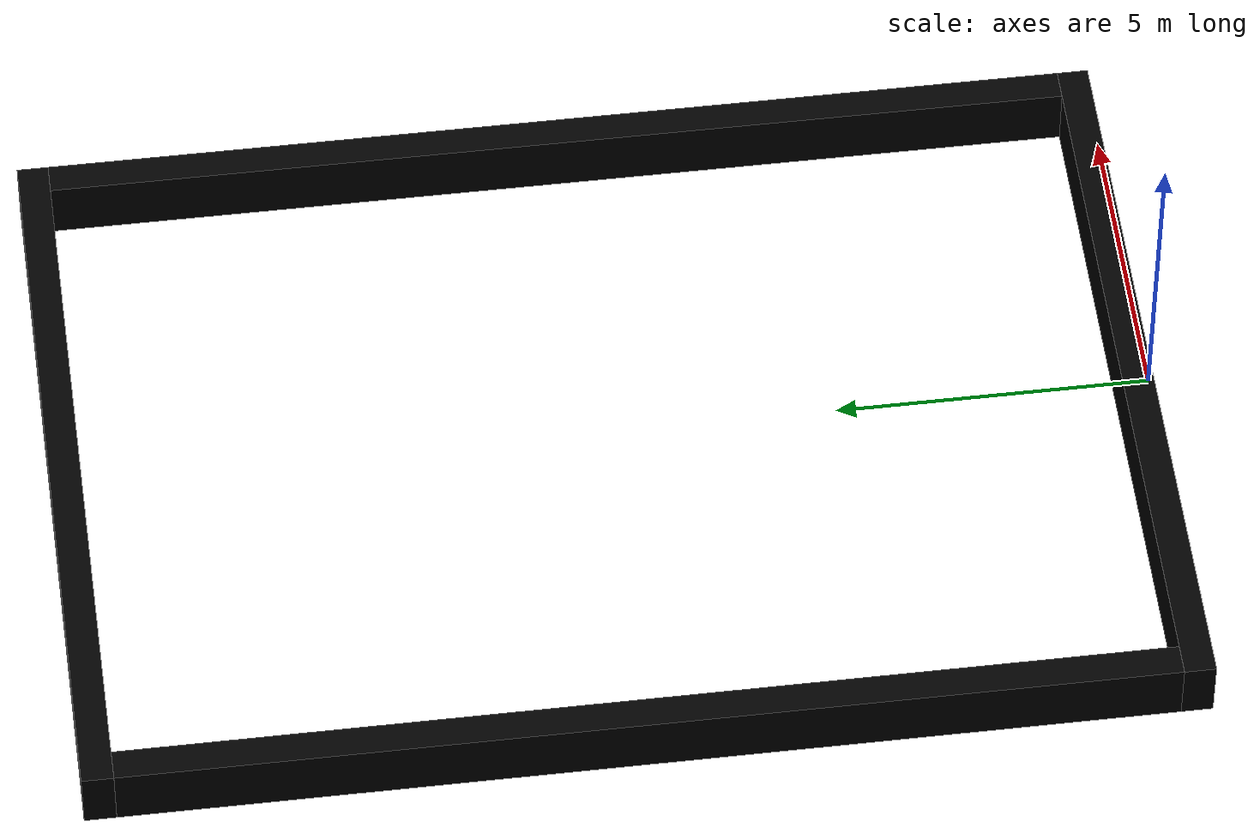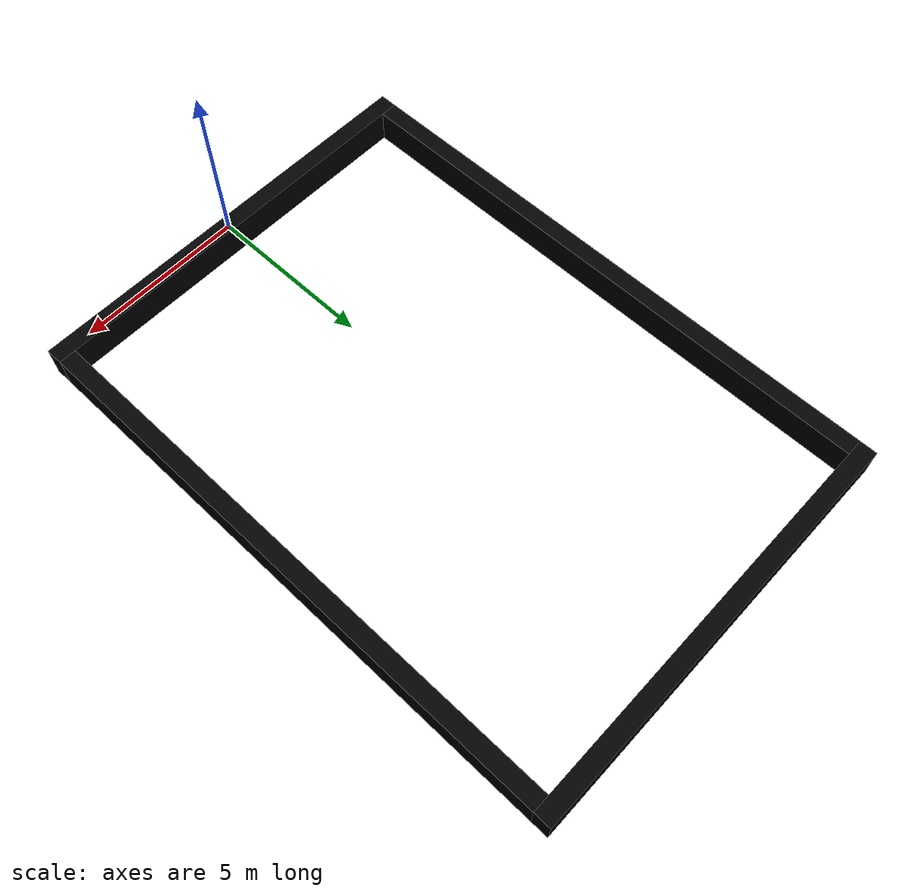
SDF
<sdf version="1.5">
 <world name="default">
  <scene><grid>true</grid></scene>
  <model name="ground">
   <link name="body">
    <collision name="geom">
     <geometry><plane><normal>0 0 1</normal><size>100 100</size></plane></geometry>
     <surface><friction><ode><mu>100</mu><mu2>100</mu2></ode></friction></surface>
    </collision>
    <velocity_decay><linear>0</linear><angular>0</angular></velocity_decay>
   </link>
   <static>false</static>
  </model>
  <model name="parking_space">
   <static>true</static>
   <link name="left_wall">
    <pose>-5.94 8.735 0 0 0 0</pose>
    <collision name="geom2"><geometry><box><size>0.5 16.47 1</size></box></geometry></collision>
    <visual name="geom3">
     <geometry><box><size>0.5 16.47 1</size></box></geometry>
     <material><ambient>0 0 0 0</ambient></material>
    </visual>
   </link>
   <link name="right_wall">
    <pose>5.94 8.735 0 0 0 0</pose>
    <collision name="geom2"><geometry><box><size>0.5 16.47 1</size></box></geometry></collision>
    <visual name="geom3">
     <geometry><box><size>0.5 16.47 1</size></box></geometry>
     <material><ambient>0 0 0 0</ambient></material>
    </visual>
   </link>
   <link name="down_wall">
    <pose>0 0.25 0 0 0 0</pose>
    <collision name="geom2"><geometry><box><size>12.38 0.5 1</size></box></geometry></collision>
    <visual name="geom3">
     <geometry><box><size>12.38 0.5 1</size></box></geometry>
     <material><ambient>0 0 0 0</ambient></material>
    </visual>
   </link>
   <link name="upper_wall">
    <pose>0 17.22 0 0 0 0</pose>
    <collision name="geom2"><geometry><box><size>12.38 0.5 1</size></box></geometry></collision>
    <visual name="geom3">
     <geometry><box><size>12.38 0.5 1</size></box></geometry>
     <material><ambient>0 0 0 0</ambient></material>
    </visual>
   </link>
  </model>
 </world>
</sdf>
